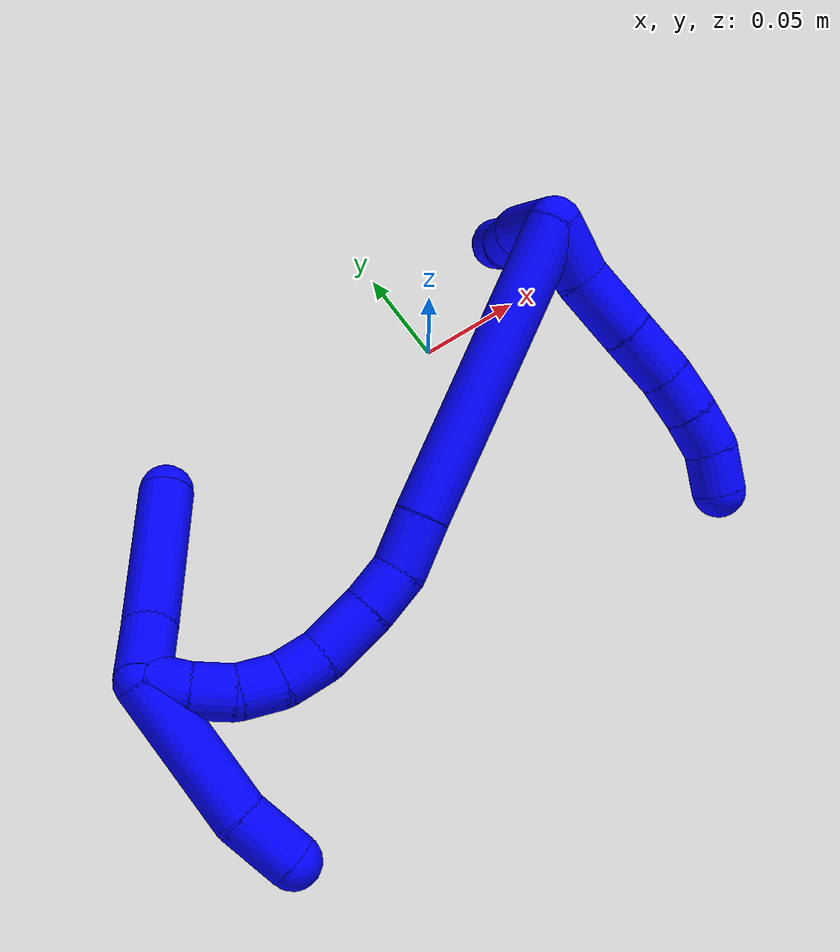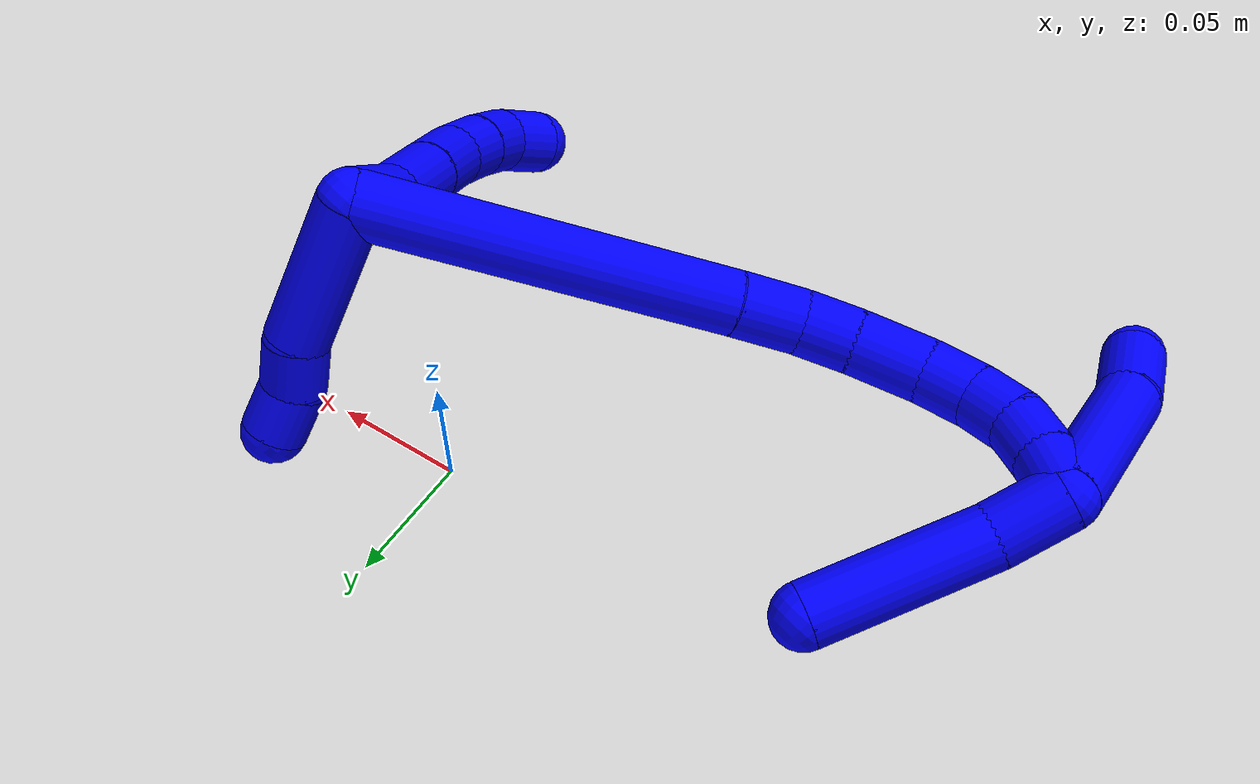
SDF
<sdf version="1.7">
 <world name="default">
  <model name="1">
   <static>0</static>
   <link name="1">
    <collision name="collision-cylinder-e_1_2_8">
     <pose>0.004158 -0.012319 0.004696 1.20663 0.305481 0.211342</pose>
     <geometry><cylinder><radius>0.0125</radius><length>0.027648</length></cylinder></geometry>
     <surface>
      <friction><ode><mu>1.16</mu><mu2>1.16</mu2><slip1>0</slip1><slip2>0</slip2></ode></friction>
      <contact><ode><kp>1e+06</kp><kd>1</kd><max_vel>0</max_vel><min_depth>0.001</min_depth></ode></contact>
     </surface>
    </collision>
    <visual name="visual-cylinder-e_1_2_8">
     <pose>0.004158 -0.012319 0.004696 1.20663 0.305481 0.211342</pose>
     <geometry><cylinder><radius>0.0125</radius><length>0.027648</length></cylinder></geometry>
     <material><ambient>0 0 1 1</ambient></material>
    </visual>
    <collision name="collision-cylinder-e_2_8_9">
     <pose>0.01621 -0.036952 0.016451 1.05024 0.507633 0.298362</pose>
     <geometry><cylinder><radius>0.0125</radius><length>0.032483</length></cylinder></geometry>
     <surface>
      <friction><ode><mu>1.16</mu><mu2>1.16</mu2><slip1>0</slip1><slip2>0</slip2></ode></friction>
      <contact><ode><kp>1e+06</kp><kd>1</kd><max_vel>0</max_vel><min_depth>0.001</min_depth></ode></contact>
     </surface>
    </collision>
    <visual name="visual-cylinder-e_2_8_9">
     <pose>0.01621 -0.036952 0.016451 1.05024 0.507633 0.298362</pose>
     <geometry><cylinder><radius>0.0125</radius><length>0.032483</length></cylinder></geometry>
     <material><ambient>0 0 1 1</ambient></material>
    </visual>
    <collision name="collision-cylinder-e_3_9_10">
     <pose>0.031096 -0.059971 0.02892 1.10291 0.527664 0.329309</pose>
     <geometry><cylinder><radius>0.0125</radius><length>0.027766</length></cylinder></geometry>
     <surface>
      <friction><ode><mu>1.16</mu><mu2>1.16</mu2><slip1>0</slip1><slip2>0</slip2></ode></friction>
      <contact><ode><kp>1e+06</kp><kd>1</kd><max_vel>0</max_vel><min_depth>0.001</min_depth></ode></contact>
     </surface>
    </collision>
    <visual name="visual-cylinder-e_3_9_10">
     <pose>0.031096 -0.059971 0.02892 1.10291 0.527664 0.329309</pose>
     <geometry><cylinder><radius>0.0125</radius><length>0.027766</length></cylinder></geometry>
     <material><ambient>0 0 1 1</ambient></material>
    </visual>
    <collision name="collision-cylinder-e_4_10_11">
     <pose>0.042186 -0.079223 0.039186 1.05406 0.395162 0.231952</pose>
     <geometry><cylinder><radius>0.0125</radius><length>0.021302</length></cylinder></geometry>
     <surface>
      <friction><ode><mu>1.16</mu><mu2>1.16</mu2><slip1>0</slip1><slip2>0</slip2></ode></friction>
      <contact><ode><kp>1e+06</kp><kd>1</kd><max_vel>0</max_vel><min_depth>0.001</min_depth></ode></contact>
     </surface>
    </collision>
    <visual name="visual-cylinder-e_4_10_11">
     <pose>0.042186 -0.079223 0.039186 1.05406 0.395162 0.231952</pose>
     <geometry><cylinder><radius>0.0125</radius><length>0.021302</length></cylinder></geometry>
     <material><ambient>0 0 1 1</ambient></material>
    </visual>
    <collision name="collision-cylinder-e_5_11_12">
     <pose>0.04967 -0.096289 0.048235 1.11343 0.342366 0.214365</pose>
     <geometry><cylinder><radius>0.0125</radius><length>0.020159</length></cylinder></geometry>
     <surface>
      <friction><ode><mu>1.16</mu><mu2>1.16</mu2><slip1>0</slip1><slip2>0</slip2></ode></friction>
      <contact><ode><kp>1e+06</kp><kd>1</kd><max_vel>0</max_vel><min_depth>0.001</min_depth></ode></contact>
     </surface>
    </collision>
    <visual name="visual-cylinder-e_5_11_12">
     <pose>0.04967 -0.096289 0.048235 1.11343 0.342366 0.214365</pose>
     <geometry><cylinder><radius>0.0125</radius><length>0.020159</length></cylinder></geometry>
     <material><ambient>0 0 1 1</ambient></material>
    </visual>
    <collision name="collision-cylinder-e_6_12_6">
     <pose>0.053108 -0.113978 0.057163 1.09417 0.005207 0.003171</pose>
     <geometry><cylinder><radius>0.0125</radius><length>0.020642</length></cylinder></geometry>
     <surface>
      <friction><ode><mu>1.16</mu><mu2>1.16</mu2><slip1>0</slip1><slip2>0</slip2></ode></friction>
      <contact><ode><kp>1e+06</kp><kd>1</kd><max_vel>0</max_vel><min_depth>0.001</min_depth></ode></contact>
     </surface>
    </collision>
    <visual name="visual-cylinder-e_6_12_6">
     <pose>0.053108 -0.113978 0.057163 1.09417 0.005207 0.003171</pose>
     <geometry><cylinder><radius>0.0125</radius><length>0.020642</length></cylinder></geometry>
     <material><ambient>0 0 1 1</ambient></material>
    </visual>
    <collision name="collision-cylinder-e_1_2_13">
     <pose>-4.5e-05 -0.014833 -0.025734 2.61872 -0.001523 -0.005692</pose>
     <geometry><cylinder><radius>0.0125</radius><length>0.059405</length></cylinder></geometry>
     <surface>
      <friction><ode><mu>1.16</mu><mu2>1.16</mu2><slip1>0</slip1><slip2>0</slip2></ode></friction>
      <contact><ode><kp>1e+06</kp><kd>1</kd><max_vel>0</max_vel><min_depth>0.001</min_depth></ode></contact>
     </surface>
    </collision>
    <visual name="visual-cylinder-e_1_2_13">
     <pose>-4.5e-05 -0.014833 -0.025734 2.61872 -0.001523 -0.005692</pose>
     <geometry><cylinder><radius>0.0125</radius><length>0.059405</length></cylinder></geometry>
     <material><ambient>0 0 1 1</ambient></material>
    </visual>
    <collision name="collision-cylinder-e_2_13_14">
     <pose>-0.001277 -0.036591 -0.058795 2.38427 -0.117102 -0.292563</pose>
     <geometry><cylinder><radius>0.0125</radius><length>0.020303</length></cylinder></geometry>
     <surface>
      <friction><ode><mu>1.16</mu><mu2>1.16</mu2><slip1>0</slip1><slip2>0</slip2></ode></friction>
      <contact><ode><kp>1e+06</kp><kd>1</kd><max_vel>0</max_vel><min_depth>0.001</min_depth></ode></contact>
     </surface>
    </collision>
    <visual name="visual-cylinder-e_2_13_14">
     <pose>-0.001277 -0.036591 -0.058795 2.38427 -0.117102 -0.292563</pose>
     <geometry><cylinder><radius>0.0125</radius><length>0.020303</length></cylinder></geometry>
     <material><ambient>0 0 1 1</ambient></material>
    </visual>
    <collision name="collision-cylinder-e_3_14_5">
     <pose>-0.002635 -0.048054 -0.075195 2.67799 -0.016974 -0.071882</pose>
     <geometry><cylinder><radius>0.0125</radius><length>0.020291</length></cylinder></geometry>
     <surface>
      <friction><ode><mu>1.16</mu><mu2>1.16</mu2><slip1>0</slip1><slip2>0</slip2></ode></friction>
      <contact><ode><kp>1e+06</kp><kd>1</kd><max_vel>0</max_vel><min_depth>0.001</min_depth></ode></contact>
     </surface>
    </collision>
    <visual name="visual-cylinder-e_3_14_5">
     <pose>-0.002635 -0.048054 -0.075195 2.67799 -0.016974 -0.071882</pose>
     <geometry><cylinder><radius>0.0125</radius><length>0.020291</length></cylinder></geometry>
     <material><ambient>0 0 1 1</ambient></material>
    </visual>
    <collision name="collision-cylinder-e_1_2_15">
     <pose>-0.045054 -0.044532 0.03312 0.931316 -0.681899 -0.352882</pose>
     <geometry><cylinder><radius>0.0125</radius><length>0.142967</length></cylinder></geometry>
     <surface>
      <friction><ode><mu>1.16</mu><mu2>1.16</mu2><slip1>0</slip1><slip2>0</slip2></ode></friction>
      <contact><ode><kp>1e+06</kp><kd>1</kd><max_vel>0</max_vel><min_depth>0.001</min_depth></ode></contact>
     </surface>
    </collision>
    <visual name="visual-cylinder-e_1_2_15">
     <pose>-0.045054 -0.044532 0.03312 0.931316 -0.681899 -0.352882</pose>
     <geometry><cylinder><radius>0.0125</radius><length>0.142967</length></cylinder></geometry>
     <material><ambient>0 0 1 1</ambient></material>
    </visual>
    <collision name="collision-cylinder-e_2_15_16">
     <pose>-0.097964 -0.097743 0.071999 0.984978 -0.646269 -0.355582</pose>
     <geometry><cylinder><radius>0.0125</radius><length>0.026093</length></cylinder></geometry>
     <surface>
      <friction><ode><mu>1.16</mu><mu2>1.16</mu2><slip1>0</slip1><slip2>0</slip2></ode></friction>
      <contact><ode><kp>1e+06</kp><kd>1</kd><max_vel>0</max_vel><min_depth>0.001</min_depth></ode></contact>
     </surface>
    </collision>
    <visual name="visual-cylinder-e_2_15_16">
     <pose>-0.097964 -0.097743 0.071999 0.984978 -0.646269 -0.355582</pose>
     <geometry><cylinder><radius>0.0125</radius><length>0.026093</length></cylinder></geometry>
     <material><ambient>0 0 1 1</ambient></material>
    </visual>
    <collision name="collision-cylinder-e_3_16_17">
     <pose>-0.114591 -0.111213 0.081942 0.85292 -0.943241 -0.455399</pose>
     <geometry><cylinder><radius>0.0125</radius><length>0.021668</length></cylinder></geometry>
     <surface>
      <friction><ode><mu>1.16</mu><mu2>1.16</mu2><slip1>0</slip1><slip2>0</slip2></ode></friction>
      <contact><ode><kp>1e+06</kp><kd>1</kd><max_vel>0</max_vel><min_depth>0.001</min_depth></ode></contact>
     </surface>
    </collision>
    <visual name="visual-cylinder-e_3_16_17">
     <pose>-0.114591 -0.111213 0.081942 0.85292 -0.943241 -0.455399</pose>
     <geometry><cylinder><radius>0.0125</radius><length>0.021668</length></cylinder></geometry>
     <material><ambient>0 0 1 1</ambient></material>
    </visual>
    <collision name="collision-cylinder-e_4_17_18">
     <pose>-0.135726 -0.121145 0.09093 0.81926 -1.05351 -0.494683</pose>
     <geometry><cylinder><radius>0.0125</radius><length>0.028453</length></cylinder></geometry>
     <surface>
      <friction><ode><mu>1.16</mu><mu2>1.16</mu2><slip1>0</slip1><slip2>0</slip2></ode></friction>
      <contact><ode><kp>1e+06</kp><kd>1</kd><max_vel>0</max_vel><min_depth>0.001</min_depth></ode></contact>
     </surface>
    </collision>
    <visual name="visual-cylinder-e_4_17_18">
     <pose>-0.135726 -0.121145 0.09093 0.81926 -1.05351 -0.494683</pose>
     <geometry><cylinder><radius>0.0125</radius><length>0.028453</length></cylinder></geometry>
     <material><ambient>0 0 1 1</ambient></material>
    </visual>
    <collision name="collision-cylinder-e_5_18_19">
     <pose>-0.158038 -0.127891 0.098278 0.562797 -1.277 -0.422696</pose>
     <geometry><cylinder><radius>0.0125</radius><length>0.020784</length></cylinder></geometry>
     <surface>
      <friction><ode><mu>1.16</mu><mu2>1.16</mu2><slip1>0</slip1><slip2>0</slip2></ode></friction>
      <contact><ode><kp>1e+06</kp><kd>1</kd><max_vel>0</max_vel><min_depth>0.001</min_depth></ode></contact>
     </surface>
    </collision>
    <visual name="visual-cylinder-e_5_18_19">
     <pose>-0.158038 -0.127891 0.098278 0.562797 -1.277 -0.422696</pose>
     <geometry><cylinder><radius>0.0125</radius><length>0.020784</length></cylinder></geometry>
     <material><ambient>0 0 1 1</ambient></material>
    </visual>
    <collision name="collision-cylinder-e_6_19_20">
     <pose>-0.177873 -0.128312 0.1019 -0.83338 -1.41029 0.720545</pose>
     <geometry><cylinder><radius>0.0125</radius><length>0.020033</length></cylinder></geometry>
     <surface>
      <friction><ode><mu>1.16</mu><mu2>1.16</mu2><slip1>0</slip1><slip2>0</slip2></ode></friction>
      <contact><ode><kp>1e+06</kp><kd>1</kd><max_vel>0</max_vel><min_depth>0.001</min_depth></ode></contact>
     </surface>
    </collision>
    <visual name="visual-cylinder-e_6_19_20">
     <pose>-0.177873 -0.128312 0.1019 -0.83338 -1.41029 0.720545</pose>
     <geometry><cylinder><radius>0.0125</radius><length>0.020033</length></cylinder></geometry>
     <material><ambient>0 0 1 1</ambient></material>
    </visual>
    <collision name="collision-cylinder-e_7_20_21">
     <pose>-0.197271 -0.124641 0.101139 -2.20721 -1.25652 1.9277</pose>
     <geometry><cylinder><radius>0.0125</radius><length>0.02</length></cylinder></geometry>
     <surface>
      <friction><ode><mu>1.16</mu><mu2>1.16</mu2><slip1>0</slip1><slip2>0</slip2></ode></friction>
      <contact><ode><kp>1e+06</kp><kd>1</kd><max_vel>0</max_vel><min_depth>0.001</min_depth></ode></contact>
     </surface>
    </collision>
    <visual name="visual-cylinder-e_7_20_21">
     <pose>-0.197271 -0.124641 0.101139 -2.20721 -1.25652 1.9277</pose>
     <geometry><cylinder><radius>0.0125</radius><length>0.02</length></cylinder></geometry>
     <material><ambient>0 0 1 1</ambient></material>
    </visual>
    <collision name="collision-cylinder-e_8_21_1">
     <pose>-0.215698 -0.118562 0.096547 -2.22497 -1.10098 1.7875</pose>
     <geometry><cylinder><radius>0.0125</radius><length>0.020001</length></cylinder></geometry>
     <surface>
      <friction><ode><mu>1.16</mu><mu2>1.16</mu2><slip1>0</slip1><slip2>0</slip2></ode></friction>
      <contact><ode><kp>1e+06</kp><kd>1</kd><max_vel>0</max_vel><min_depth>0.001</min_depth></ode></contact>
     </surface>
    </collision>
    <visual name="visual-cylinder-e_8_21_1">
     <pose>-0.215698 -0.118562 0.096547 -2.22497 -1.10098 1.7875</pose>
     <geometry><cylinder><radius>0.0125</radius><length>0.020001</length></cylinder></geometry>
     <material><ambient>0 0 1 1</ambient></material>
    </visual>
    <collision name="collision-cylinder-e_1_1_22">
     <pose>-0.211925 -0.138746 0.116499 0.808399 0.368347 0.159031</pose>
     <geometry><cylinder><radius>0.0125</radius><length>0.070484</length></cylinder></geometry>
     <surface>
      <friction><ode><mu>1.16</mu><mu2>1.16</mu2><slip1>0</slip1><slip2>0</slip2></ode></friction>
      <contact><ode><kp>1e+06</kp><kd>1</kd><max_vel>0</max_vel><min_depth>0.001</min_depth></ode></contact>
     </surface>
    </collision>
    <visual name="visual-cylinder-e_1_1_22">
     <pose>-0.211925 -0.138746 0.116499 0.808399 0.368347 0.159031</pose>
     <geometry><cylinder><radius>0.0125</radius><length>0.070484</length></cylinder></geometry>
     <material><ambient>0 0 1 1</ambient></material>
    </visual>
    <collision name="collision-cylinder-e_2_22_4">
     <pose>-0.190818 -0.171594 0.147248 0.845568 0.606934 0.27993</pose>
     <geometry><cylinder><radius>0.0125</radius><length>0.029516</length></cylinder></geometry>
     <surface>
      <friction><ode><mu>1.16</mu><mu2>1.16</mu2><slip1>0</slip1><slip2>0</slip2></ode></friction>
      <contact><ode><kp>1e+06</kp><kd>1</kd><max_vel>0</max_vel><min_depth>0.001</min_depth></ode></contact>
     </surface>
    </collision>
    <visual name="visual-cylinder-e_2_22_4">
     <pose>-0.190818 -0.171594 0.147248 0.845568 0.606934 0.27993</pose>
     <geometry><cylinder><radius>0.0125</radius><length>0.029516</length></cylinder></geometry>
     <material><ambient>0 0 1 1</ambient></material>
    </visual>
    <collision name="collision-cylinder-e_1_1_23">
     <pose>-0.220414 -0.112917 0.079984 -2.99407 0.292296 -2.21109</pose>
     <geometry><cylinder><radius>0.0125</radius><length>0.029156</length></cylinder></geometry>
     <surface>
      <friction><ode><mu>1.16</mu><mu2>1.16</mu2><slip1>0</slip1><slip2>0</slip2></ode></friction>
      <contact><ode><kp>1e+06</kp><kd>1</kd><max_vel>0</max_vel><min_depth>0.001</min_depth></ode></contact>
     </surface>
    </collision>
    <visual name="visual-cylinder-e_1_1_23">
     <pose>-0.220414 -0.112917 0.079984 -2.99407 0.292296 -2.21109</pose>
     <geometry><cylinder><radius>0.0125</radius><length>0.029156</length></cylinder></geometry>
     <material><ambient>0 0 1 1</ambient></material>
    </visual>
    <collision name="collision-cylinder-e_2_23_3">
     <pose>-0.205153 -0.099891 0.034365 -2.80939 0.317576 -1.52497</pose>
     <geometry><cylinder><radius>0.0125</radius><length>0.070844</length></cylinder></geometry>
     <surface>
      <friction><ode><mu>1.16</mu><mu2>1.16</mu2><slip1>0</slip1><slip2>0</slip2></ode></friction>
      <contact><ode><kp>1e+06</kp><kd>1</kd><max_vel>0</max_vel><min_depth>0.001</min_depth></ode></contact>
     </surface>
    </collision>
    <visual name="visual-cylinder-e_2_23_3">
     <pose>-0.205153 -0.099891 0.034365 -2.80939 0.317576 -1.52497</pose>
     <geometry><cylinder><radius>0.0125</radius><length>0.070844</length></cylinder></geometry>
     <material><ambient>0 0 1 1</ambient></material>
    </visual>
    <collision name="collision-sphere-3">
     <pose>-0.194092 -0.088916 0.002554 0 -0 0</pose>
     <geometry><sphere><radius>0.0125</radius></sphere></geometry>
     <surface>
      <friction><ode><mu>1.16</mu><mu2>1.16</mu2><slip1>0</slip1><slip2>0</slip2></ode></friction>
      <contact><ode><kp>1e+06</kp><kd>1</kd><max_vel>0</max_vel><min_depth>0.001</min_depth></ode></contact>
     </surface>
    </collision>
    <visual name="visual-sphere-3">
     <pose>-0.194092 -0.088916 0.002554 0 -0 0</pose>
     <geometry><sphere><radius>0.0125</radius></sphere></geometry>
     <material><ambient>0 0 1 1</ambient></material>
    </visual>
    <collision name="collision-sphere-23">
     <pose>-0.216214 -0.110865 0.066176 0 -0 0</pose>
     <geometry><sphere><radius>0.0125</radius></sphere></geometry>
     <surface>
      <friction><ode><mu>1.16</mu><mu2>1.16</mu2><slip1>0</slip1><slip2>0</slip2></ode></friction>
      <contact><ode><kp>1e+06</kp><kd>1</kd><max_vel>0</max_vel><min_depth>0.001</min_depth></ode></contact>
     </surface>
    </collision>
    <visual name="visual-sphere-23">
     <pose>-0.216214 -0.110865 0.066176 0 -0 0</pose>
     <geometry><sphere><radius>0.0125</radius></sphere></geometry>
     <material><ambient>0 0 1 1</ambient></material>
    </visual>
    <collision name="collision-sphere-4">
     <pose>-0.182401 -0.180666 0.155288 0 -0 0</pose>
     <geometry><sphere><radius>0.0125</radius></sphere></geometry>
     <surface>
      <friction><ode><mu>1.16</mu><mu2>1.16</mu2><slip1>0</slip1><slip2>0</slip2></ode></friction>
      <contact><ode><kp>1e+06</kp><kd>1</kd><max_vel>0</max_vel><min_depth>0.001</min_depth></ode></contact>
     </surface>
    </collision>
    <visual name="visual-sphere-4">
     <pose>-0.182401 -0.180666 0.155288 0 -0 0</pose>
     <geometry><sphere><radius>0.0125</radius></sphere></geometry>
     <material><ambient>0 0 1 1</ambient></material>
    </visual>
    <collision name="collision-sphere-22">
     <pose>-0.199236 -0.162522 0.139207 0 -0 0</pose>
     <geometry><sphere><radius>0.0125</radius></sphere></geometry>
     <surface>
      <friction><ode><mu>1.16</mu><mu2>1.16</mu2><slip1>0</slip1><slip2>0</slip2></ode></friction>
      <contact><ode><kp>1e+06</kp><kd>1</kd><max_vel>0</max_vel><min_depth>0.001</min_depth></ode></contact>
     </surface>
    </collision>
    <visual name="visual-sphere-22">
     <pose>-0.199236 -0.162522 0.139207 0 -0 0</pose>
     <geometry><sphere><radius>0.0125</radius></sphere></geometry>
     <material><ambient>0 0 1 1</ambient></material>
    </visual>
    <collision name="collision-sphere-1">
     <pose>-0.224615 -0.114969 0.093792 0 -0 0</pose>
     <geometry><sphere><radius>0.0125</radius></sphere></geometry>
     <surface>
      <friction><ode><mu>1.16</mu><mu2>1.16</mu2><slip1>0</slip1><slip2>0</slip2></ode></friction>
      <contact><ode><kp>1e+06</kp><kd>1</kd><max_vel>0</max_vel><min_depth>0.001</min_depth></ode></contact>
     </surface>
    </collision>
    <visual name="visual-sphere-1">
     <pose>-0.224615 -0.114969 0.093792 0 -0 0</pose>
     <geometry><sphere><radius>0.0125</radius></sphere></geometry>
     <material><ambient>0 0 1 1</ambient></material>
    </visual>
    <collision name="collision-sphere-21">
     <pose>-0.206781 -0.122154 0.099302 0 -0 0</pose>
     <geometry><sphere><radius>0.0125</radius></sphere></geometry>
     <surface>
      <friction><ode><mu>1.16</mu><mu2>1.16</mu2><slip1>0</slip1><slip2>0</slip2></ode></friction>
      <contact><ode><kp>1e+06</kp><kd>1</kd><max_vel>0</max_vel><min_depth>0.001</min_depth></ode></contact>
     </surface>
    </collision>
    <visual name="visual-sphere-21">
     <pose>-0.206781 -0.122154 0.099302 0 -0 0</pose>
     <geometry><sphere><radius>0.0125</radius></sphere></geometry>
     <material><ambient>0 0 1 1</ambient></material>
    </visual>
    <collision name="collision-sphere-12">
     <pose>0.053054 -0.104807 0.052428 0 -0 0</pose>
     <geometry><sphere><radius>0.0125</radius></sphere></geometry>
     <surface>
      <friction><ode><mu>1.16</mu><mu2>1.16</mu2><slip1>0</slip1><slip2>0</slip2></ode></friction>
      <contact><ode><kp>1e+06</kp><kd>1</kd><max_vel>0</max_vel><min_depth>0.001</min_depth></ode></contact>
     </surface>
    </collision>
    <visual name="visual-sphere-12">
     <pose>0.053054 -0.104807 0.052428 0 -0 0</pose>
     <geometry><sphere><radius>0.0125</radius></sphere></geometry>
     <material><ambient>0 0 1 1</ambient></material>
    </visual>
    <collision name="collision-sphere-11">
     <pose>0.046287 -0.08777 0.044043 0 -0 0</pose>
     <geometry><sphere><radius>0.0125</radius></sphere></geometry>
     <surface>
      <friction><ode><mu>1.16</mu><mu2>1.16</mu2><slip1>0</slip1><slip2>0</slip2></ode></friction>
      <contact><ode><kp>1e+06</kp><kd>1</kd><max_vel>0</max_vel><min_depth>0.001</min_depth></ode></contact>
     </surface>
    </collision>
    <visual name="visual-sphere-11">
     <pose>0.046287 -0.08777 0.044043 0 -0 0</pose>
     <geometry><sphere><radius>0.0125</radius></sphere></geometry>
     <material><ambient>0 0 1 1</ambient></material>
    </visual>
    <collision name="collision-sphere-10">
     <pose>0.038086 -0.070676 0.034329 0 -0 0</pose>
     <geometry><sphere><radius>0.0125</radius></sphere></geometry>
     <surface>
      <friction><ode><mu>1.16</mu><mu2>1.16</mu2><slip1>0</slip1><slip2>0</slip2></ode></friction>
      <contact><ode><kp>1e+06</kp><kd>1</kd><max_vel>0</max_vel><min_depth>0.001</min_depth></ode></contact>
     </surface>
    </collision>
    <visual name="visual-sphere-10">
     <pose>0.038086 -0.070676 0.034329 0 -0 0</pose>
     <geometry><sphere><radius>0.0125</radius></sphere></geometry>
     <material><ambient>0 0 1 1</ambient></material>
    </visual>
    <collision name="collision-sphere-9">
     <pose>0.024105 -0.049265 0.02351 0 -0 0</pose>
     <geometry><sphere><radius>0.0125</radius></sphere></geometry>
     <surface>
      <friction><ode><mu>1.16</mu><mu2>1.16</mu2><slip1>0</slip1><slip2>0</slip2></ode></friction>
      <contact><ode><kp>1e+06</kp><kd>1</kd><max_vel>0</max_vel><min_depth>0.001</min_depth></ode></contact>
     </surface>
    </collision>
    <visual name="visual-sphere-9">
     <pose>0.024105 -0.049265 0.02351 0 -0 0</pose>
     <geometry><sphere><radius>0.0125</radius></sphere></geometry>
     <material><ambient>0 0 1 1</ambient></material>
    </visual>
    <collision name="collision-sphere-2">
     <geometry><sphere><radius>0.0125</radius></sphere></geometry>
     <surface>
      <friction><ode><mu>1.16</mu><mu2>1.16</mu2><slip1>0</slip1><slip2>0</slip2></ode></friction>
      <contact><ode><kp>1e+06</kp><kd>1</kd><max_vel>0</max_vel><min_depth>0.001</min_depth></ode></contact>
     </surface>
    </collision>
    <visual name="visual-sphere-2">
     <geometry><sphere><radius>0.0125</radius></sphere></geometry>
     <material><ambient>0 0 1 1</ambient></material>
    </visual>
    <collision name="collision-sphere-19">
     <pose>-0.167985 -0.129497 0.100824 0 -0 0</pose>
     <geometry><sphere><radius>0.0125</radius></sphere></geometry>
     <surface>
      <friction><ode><mu>1.16</mu><mu2>1.16</mu2><slip1>0</slip1><slip2>0</slip2></ode></friction>
      <contact><ode><kp>1e+06</kp><kd>1</kd><max_vel>0</max_vel><min_depth>0.001</min_depth></ode></contact>
     </surface>
    </collision>
    <visual name="visual-sphere-19">
     <pose>-0.167985 -0.129497 0.100824 0 -0 0</pose>
     <geometry><sphere><radius>0.0125</radius></sphere></geometry>
     <material><ambient>0 0 1 1</ambient></material>
    </visual>
    <collision name="collision-sphere-8">
     <pose>0.008315 -0.024638 0.009392 0 -0 0</pose>
     <geometry><sphere><radius>0.0125</radius></sphere></geometry>
     <surface>
      <friction><ode><mu>1.16</mu><mu2>1.16</mu2><slip1>0</slip1><slip2>0</slip2></ode></friction>
      <contact><ode><kp>1e+06</kp><kd>1</kd><max_vel>0</max_vel><min_depth>0.001</min_depth></ode></contact>
     </surface>
    </collision>
    <visual name="visual-sphere-8">
     <pose>0.008315 -0.024638 0.009392 0 -0 0</pose>
     <geometry><sphere><radius>0.0125</radius></sphere></geometry>
     <material><ambient>0 0 1 1</ambient></material>
    </visual>
    <collision name="collision-sphere-6">
     <pose>0.053162 -0.123148 0.061898 0 -0 0</pose>
     <geometry><sphere><radius>0.0125</radius></sphere></geometry>
     <surface>
      <friction><ode><mu>1.16</mu><mu2>1.16</mu2><slip1>0</slip1><slip2>0</slip2></ode></friction>
      <contact><ode><kp>1e+06</kp><kd>1</kd><max_vel>0</max_vel><min_depth>0.001</min_depth></ode></contact>
     </surface>
    </collision>
    <visual name="visual-sphere-6">
     <pose>0.053162 -0.123148 0.061898 0 -0 0</pose>
     <geometry><sphere><radius>0.0125</radius></sphere></geometry>
     <material><ambient>0 0 1 1</ambient></material>
    </visual>
    <collision name="collision-sphere-13">
     <pose>-9e-05 -0.029665 -0.051468 0 -0 0</pose>
     <geometry><sphere><radius>0.0125</radius></sphere></geometry>
     <surface>
      <friction><ode><mu>1.16</mu><mu2>1.16</mu2><slip1>0</slip1><slip2>0</slip2></ode></friction>
      <contact><ode><kp>1e+06</kp><kd>1</kd><max_vel>0</max_vel><min_depth>0.001</min_depth></ode></contact>
     </surface>
    </collision>
    <visual name="visual-sphere-13">
     <pose>-9e-05 -0.029665 -0.051468 0 -0 0</pose>
     <geometry><sphere><radius>0.0125</radius></sphere></geometry>
     <material><ambient>0 0 1 1</ambient></material>
    </visual>
    <collision name="collision-sphere-14">
     <pose>-0.002463 -0.043518 -0.066121 0 -0 0</pose>
     <geometry><sphere><radius>0.0125</radius></sphere></geometry>
     <surface>
      <friction><ode><mu>1.16</mu><mu2>1.16</mu2><slip1>0</slip1><slip2>0</slip2></ode></friction>
      <contact><ode><kp>1e+06</kp><kd>1</kd><max_vel>0</max_vel><min_depth>0.001</min_depth></ode></contact>
     </surface>
    </collision>
    <visual name="visual-sphere-14">
     <pose>-0.002463 -0.043518 -0.066121 0 -0 0</pose>
     <geometry><sphere><radius>0.0125</radius></sphere></geometry>
     <material><ambient>0 0 1 1</ambient></material>
    </visual>
    <collision name="collision-sphere-5">
     <pose>-0.002807 -0.05259 -0.084268 0 -0 0</pose>
     <geometry><sphere><radius>0.0125</radius></sphere></geometry>
     <surface>
      <friction><ode><mu>1.16</mu><mu2>1.16</mu2><slip1>0</slip1><slip2>0</slip2></ode></friction>
      <contact><ode><kp>1e+06</kp><kd>1</kd><max_vel>0</max_vel><min_depth>0.001</min_depth></ode></contact>
     </surface>
    </collision>
    <visual name="visual-sphere-5">
     <pose>-0.002807 -0.05259 -0.084268 0 -0 0</pose>
     <geometry><sphere><radius>0.0125</radius></sphere></geometry>
     <material><ambient>0 0 1 1</ambient></material>
    </visual>
    <collision name="collision-sphere-15">
     <pose>-0.090107 -0.089064 0.06624 0 -0 0</pose>
     <geometry><sphere><radius>0.0125</radius></sphere></geometry>
     <surface>
      <friction><ode><mu>1.16</mu><mu2>1.16</mu2><slip1>0</slip1><slip2>0</slip2></ode></friction>
      <contact><ode><kp>1e+06</kp><kd>1</kd><max_vel>0</max_vel><min_depth>0.001</min_depth></ode></contact>
     </surface>
    </collision>
    <visual name="visual-sphere-15">
     <pose>-0.090107 -0.089064 0.06624 0 -0 0</pose>
     <geometry><sphere><radius>0.0125</radius></sphere></geometry>
     <material><ambient>0 0 1 1</ambient></material>
    </visual>
    <collision name="collision-sphere-16">
     <pose>-0.105821 -0.106422 0.077757 0 -0 0</pose>
     <geometry><sphere><radius>0.0125</radius></sphere></geometry>
     <surface>
      <friction><ode><mu>1.16</mu><mu2>1.16</mu2><slip1>0</slip1><slip2>0</slip2></ode></friction>
      <contact><ode><kp>1e+06</kp><kd>1</kd><max_vel>0</max_vel><min_depth>0.001</min_depth></ode></contact>
     </surface>
    </collision>
    <visual name="visual-sphere-16">
     <pose>-0.105821 -0.106422 0.077757 0 -0 0</pose>
     <geometry><sphere><radius>0.0125</radius></sphere></geometry>
     <material><ambient>0 0 1 1</ambient></material>
    </visual>
    <collision name="collision-sphere-17">
     <pose>-0.123361 -0.116005 0.086126 0 -0 0</pose>
     <geometry><sphere><radius>0.0125</radius></sphere></geometry>
     <surface>
      <friction><ode><mu>1.16</mu><mu2>1.16</mu2><slip1>0</slip1><slip2>0</slip2></ode></friction>
      <contact><ode><kp>1e+06</kp><kd>1</kd><max_vel>0</max_vel><min_depth>0.001</min_depth></ode></contact>
     </surface>
    </collision>
    <visual name="visual-sphere-17">
     <pose>-0.123361 -0.116005 0.086126 0 -0 0</pose>
     <geometry><sphere><radius>0.0125</radius></sphere></geometry>
     <material><ambient>0 0 1 1</ambient></material>
    </visual>
    <collision name="collision-sphere-18">
     <pose>-0.148091 -0.126285 0.095733 0 -0 0</pose>
     <geometry><sphere><radius>0.0125</radius></sphere></geometry>
     <surface>
      <friction><ode><mu>1.16</mu><mu2>1.16</mu2><slip1>0</slip1><slip2>0</slip2></ode></friction>
      <contact><ode><kp>1e+06</kp><kd>1</kd><max_vel>0</max_vel><min_depth>0.001</min_depth></ode></contact>
     </surface>
    </collision>
    <visual name="visual-sphere-18">
     <pose>-0.148091 -0.126285 0.095733 0 -0 0</pose>
     <geometry><sphere><radius>0.0125</radius></sphere></geometry>
     <material><ambient>0 0 1 1</ambient></material>
    </visual>
    <collision name="collision-sphere-20">
     <pose>-0.187761 -0.127127 0.102976 0 -0 0</pose>
     <geometry><sphere><radius>0.0125</radius></sphere></geometry>
     <surface>
      <friction><ode><mu>1.16</mu><mu2>1.16</mu2><slip1>0</slip1><slip2>0</slip2></ode></friction>
      <contact><ode><kp>1e+06</kp><kd>1</kd><max_vel>0</max_vel><min_depth>0.001</min_depth></ode></contact>
     </surface>
    </collision>
    <visual name="visual-sphere-20">
     <pose>-0.187761 -0.127127 0.102976 0 -0 0</pose>
     <geometry><sphere><radius>0.0125</radius></sphere></geometry>
     <material><ambient>0 0 1 1</ambient></material>
    </visual>
    <inertial>
     <pose>-0.090081 -0.082488 0.048726 0 -0 0</pose>
     <mass>0.75</mass>
     <inertia>
      <ixx>0.000152</ixx>
      <ixy>0</ixy>
      <ixz>0</ixz>
      <iyy>9.3e-05</iyy>
      <iyz>0</iyz>
      <izz>0.000336</izz>
     </inertia>
    </inertial>
   </link>
   <pose>0.050646 -0.023946 0.096947 1.10773 0.037026 -0.297352</pose>
  </model>
 </world>
</sdf>
